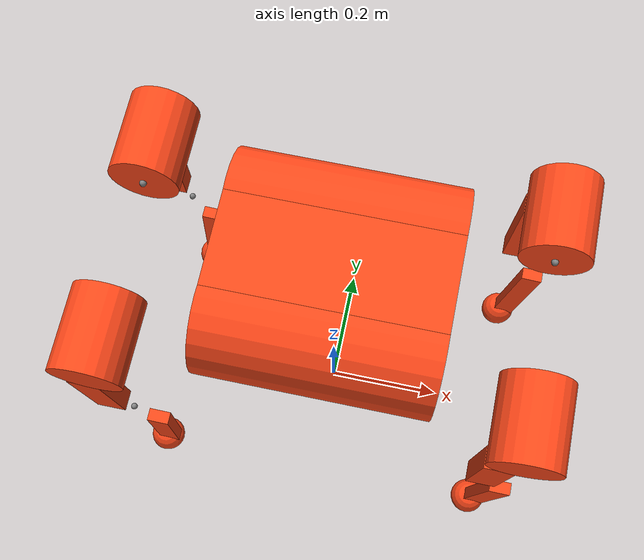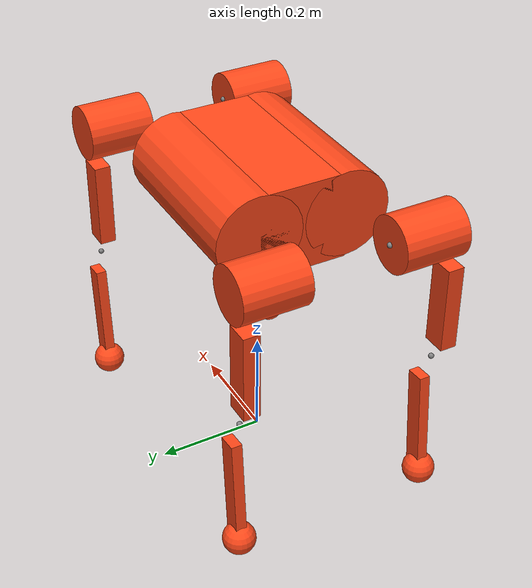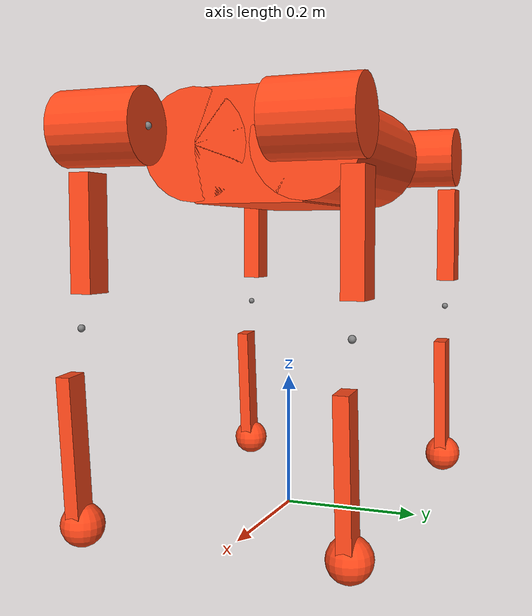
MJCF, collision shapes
<mujoco model="MCat">
  <default>
    <default class="robot">
      <default class="motor">
        <joint />
        <motor />
      </default>
      <default class="visual">
        <geom material="visualgeom" contype="0" conaffinity="0" group="2" />
      </default>
      <default class="collision">
        <geom material="collision_material" condim="3" contype="0" conaffinity="1" priority="1" group="1" solref="0.005 1" solimp="0.99 0.999 1e-05" friction="1 0.01 0.01" />
      </default>
    </default>
  </default>

  <compiler angle="radian" />

  <asset>
    <material name="blue" rgba="0 0 0 1" />
    <material name="default_material" rgba="0.7 0.7 0.7 1" />
    <material name="collision_material" rgba="1.0 0.28 0.1 0.9" />
    <mesh name="base.STL" file="package://panda3_description/meshes/base.STL" />
    <mesh name="FL_hip.STL" file="package://panda3_description/meshes/FL_hip.STL" />
    <mesh name="FL_thigh.STL" file="package://panda3_description/meshes/FL_thigh.STL" />
    <mesh name="FL_calf.STL" file="package://panda3_description/meshes/FL_calf.STL" />
    <mesh name="FL_foot.STL" file="package://panda3_description/meshes/FL_foot.STL" />
    <mesh name="FR_hip.STL" file="package://panda3_description/meshes/FR_hip.STL" />
    <mesh name="FR_thigh.STL" file="package://panda3_description/meshes/FR_thigh.STL" />
    <mesh name="FR_calf.STL" file="package://panda3_description/meshes/FR_calf.STL" />
    <mesh name="FR_foot.STL" file="package://panda3_description/meshes/FR_foot.STL" />
    <mesh name="RL_hip.STL" file="package://panda3_description/meshes/RL_hip.STL" />
    <mesh name="RL_thigh.STL" file="package://panda3_description/meshes/RL_thigh.STL" />
    <mesh name="RL_calf.STL" file="package://panda3_description/meshes/RL_calf.STL" />
    <mesh name="RL_foot.STL" file="package://panda3_description/meshes/RL_foot.STL" />
    <mesh name="RR_hip.STL" file="package://panda3_description/meshes/RR_hip.STL" />
    <mesh name="RR_thigh.STL" file="package://panda3_description/meshes/RR_thigh.STL" />
    <mesh name="RR_calf.STL" file="package://panda3_description/meshes/RR_calf.STL" />
    <mesh name="RR_foot.STL" file="package://panda3_description/meshes/RR_foot.STL" />
  </asset>

  <worldbody>
    <body name="base" pos="0.00000000 0.00000000 0.55351000" quat="1 0 0 0" childclass="robot">
      <inertial
        pos="0.00318608 0.00029494 -0.01284135"
        quat="1 0 0 0"
        mass="20.90069011"
        diaginertia="0.12311424 0.38550893 0.44680085"/>
      <freejoint name="floating_base" />
      <geom name="base_collision_0" pos="0 0 -0.013" quat="1.0 0.0 0.0 0.0" type="box" size="0.16 0.08 0.08" class="collision" />
      <geom name="base_collision_1" pos="0 -0.082 -0.011" quat="0.7071067835889063 0.0 0.7071067787841887 0.0" type="cylinder" size="0.08 0.16" class="collision" />
      <geom name="base_collision_2" pos="0 0.082 -0.011" quat="0.7071067835889063 0.0 0.7071067787841887 0.0" type="cylinder" size="0.08 0.16" class="collision" />
      <geom name="base_visual" pos="0 0 0" quat="1.0 0.0 0.0 0.0" material="blue" type="mesh" mesh="base.STL" class="visual" />
      <body name="FL_hip" pos="0.286 0.082 -0.0" quat="1.0 0.0 0.0 0.0">
        <joint name="FL_hip_joint" type="hinge" ref="0.0" class="motor" range="-0.8 0.8" axis="1 0 0" />
        <site name="FL_hip_joint_site" pos="0 0 0" quat="1 0 0 0" />
        <inertial pos="-0.00230043 -0.01037046 0.00016444" quat="1.0 0.0 0.0 0.0" mass="1.12888829" diaginertia="0.00101564 0.00159448 0.00123571" />
        <geom name="FL_hip_visual" pos="0 0 0" quat="1.0 0.0 0.0 0.0" material="blue" type="mesh" mesh="FL_hip.STL" class="visual" />
        <body name="FL_thigh" pos="0 0.1055 0" quat="1.0 0.0 0.0 0.0">
          <joint name="FL_thigh_joint" type="hinge" ref="0.0" class="motor" range="-1.62 3.735" axis="0 1 0" />
          <site name="FL_thigh_joint_site" pos="0 0 0" quat="1 0 0 0" />
          <inertial pos="-0.00302298 -0.03822477 -0.02112195" quat="1.0 0.0 0.0 0.0" mass="1.96466711" diaginertia="0.00912715 0.00870374 0.0027557" />
          <geom name="FL_thigh_collision_0" pos="0 -0.043 0" quat="0.7073882691671998 0.706825181105366 0.0 0.0" type="cylinder" size="0.05 0.06" class="collision" />
          <geom name="FL_thigh_collision_1" pos="-0.021 0 -0.135" quat="1.0 0.0 0.0 0.0" type="box" size="0.022 0.015 0.08" class="collision" />
          <geom name="FL_thigh_visual" pos="0 0 0" quat="1.0 0.0 0.0 0.0" material="blue" type="mesh" mesh="FL_thigh.STL" class="visual" />
          <body name="FL_calf" pos="0 0 -0.26" quat="1.0 0.0 0.0 0.0">
            <joint name="FL_calf_joint" type="hinge" ref="0.0" class="motor" range="-2.443 -0.524" axis="0 1 0" />
            <site name="FL_calf_joint_site" pos="0 0 0" quat="1 0 0 0" />
            <inertial pos="0.01449114 0.0 -0.12267318" quat="1.0 0.0 0.0 0.0" mass="0.22017362" diaginertia="0.00212347 0.00216129 5.417e-05" />
            <geom name="FL_calf_collision" pos="0.02 0 -0.158" quat="0.6785569656238399 0.0 0.7345477822465786 0.0" type="box" size="0.1 0.01 0.0175" class="collision" />
            <geom name="FL_calf_visual" pos="0 0 0" quat="1.0 0.0 0.0 0.0" material="blue" type="mesh" mesh="FL_calf.STL" class="visual" />
            <body name="FL_foot" pos="0 0 -0.26851" quat="1.0 0.0 0.0 0.0">
              <inertial pos="-0.00728207 0.0000000 -0.01210451" quat="1.0 0.0 0.0 0.0" mass="0.03331764" diaginertia="7.22e-06 1.096e-05 1.03e-05" />
              <geom name="FL_foot_collision" pos="0.005 0 0.005" quat="1.0 0.0 0.0 0.0" type="sphere" size="0.03" class="collision" />
              <geom name="FL_foot_visual" pos="0 0 0" quat="1.0 0.0 0.0 0.0" material="blue" type="mesh" mesh="FL_foot.STL" class="visual" />
            </body>
          </body>
        </body>
      </body>
      <body name="FR_hip" pos="0.286 -0.082 -0.0" quat="1.0 0.0 0.0 0.0">
        <joint name="FR_hip_joint" type="hinge" ref="0.0" class="motor" range="-0.8 0.8" axis="1 0 0" />
        <site name="FR_hip_joint_site" pos="0 0 0" quat="1 0 0 0" />
        <inertial pos="-0.00230043 0.01037046 -0.0001644" quat="1.0 0.0 0.0 0.0" mass="1.12888829" diaginertia="0.00101564 0.00159448 0.00123571" />
        <geom name="FR_hip_visual" pos="0 0 0" quat="1.0 0.0 0.0 0.0" material="blue" type="mesh" mesh="FR_hip.STL" class="visual" />
        <body name="FR_thigh" pos="0 -0.1035 0" quat="1.0 0.0 0.0 0.0">
          <joint name="FR_thigh_joint" type="hinge" ref="0.0" class="motor" range="-1.62 3.73" axis="0 1 0" />
          <site name="FR_thigh_joint_site" pos="0 0 0" quat="1 0 0 0" />
          <inertial pos="-0.0030885 0.03622672 -0.02113314" quat="1.0 0.0 0.0 0.0" mass="1.96467358" diaginertia="0.00913837 0.00871947 0.00276069" />
          <geom name="FR_thigh_collision_0" pos="0 0.043 0" quat="0.7073882691671998 0.706825181105366 0.0 0.0" type="cylinder" size="0.05 0.06" class="collision" />
          <geom name="FR_thigh_collision_1" pos="-0.021 0 -0.135" quat="1.0 0.0 0.0 0.0" type="box" size="0.022 0.015 0.08" class="collision" />
          <geom name="FR_thigh_visual" pos="0 0 0" quat="1.0 0.0 0.0 0.0" material="blue" type="mesh" mesh="FR_thigh.STL" class="visual" />
          <body name="FR_calf" pos="0 0 -0.26" quat="1.0 0.0 0.0 0.0">
            <joint name="FR_calf_joint" type="hinge" ref="0.0" class="motor" range="-2.44 -0.52" axis="0 1 0" />
            <site name="FR_calf_joint_site" pos="0 0 0" quat="1 0 0 0" />
            <inertial pos="0.01449052 0.0 -0.12267287" quat="1.0 0.0 0.0 0.0" mass="0.22016958" diaginertia="0.00212347 0.00216129 5.416e-05" />
            <geom name="FR_calf_collision" pos="0.02 0 -0.158" quat="0.6785569656238399 0.0 0.7345477822465786 0.0" type="box" size="0.1 0.01 0.0175" class="collision" />
            <geom name="FR_calf_visual" pos="0 0 0" quat="1.0 0.0 0.0 0.0" material="blue" type="mesh" mesh="FR_calf.STL" class="visual" />
            <body name="FR_foot" pos="0 0 -0.26851" quat="1.0 0.0 0.0 0.0">
              <inertial pos="-0.00728207 0.0000000 -0.01210451" quat="1.0 0.0 0.0 0.0" mass="0.03331764" diaginertia="7.22e-06 1.096e-05 1.03e-05" />
              <geom name="FR_foot_collision" pos="0.005 0 0.005" quat="1.0 0.0 0.0 0.0" type="sphere" size="0.03" class="collision" />
              <geom name="FR_foot_visual" pos="0 0 0" quat="1.0 0.0 0.0 0.0" material="blue" type="mesh" mesh="FR_foot.STL" class="visual" />
            </body>
          </body>
        </body>
      </body>
      <body name="RL_hip" pos="-0.286 0.082 -0.0" quat="1.0 0.0 0.0 0.0">
        <joint name="RL_hip_joint" type="hinge" ref="0.0" class="motor" range="-0.8 0.8" axis="1 0 0" />
        <site name="RL_hip_joint_site" pos="0 0 0" quat="1 0 0 0" />
        <inertial pos="0.00230043 -0.01037046 -0.00016444" quat="1.0 0.0 0.0 0.0" mass="1.12888829" diaginertia="0.00101564 0.00159448 0.00123571" />
        <geom name="RL_hip_visual" pos="0 0 0" quat="1.0 0.0 0.0 0.0" material="blue" type="mesh" mesh="RL_hip.STL" class="visual" />
        <body name="RL_thigh" pos="0 0.1055 0" quat="1.0 0.0 0.0 0.0">
          <joint name="RL_thigh_joint" type="hinge" ref="0.0" class="motor" range="-1.62 3.73" axis="0 1 0" />
          <site name="RL_thigh_joint_site" pos="0 0 0" quat="1 0 0 0" />
          <inertial pos="-0.00302298 -0.03822477 -0.02112195" quat="1.0 0.0 0.0 0.0" mass="1.96466711" diaginertia="0.00912715 0.00870374 0.0027557" />
          <geom name="RL_thigh_collision_0" pos="0 -0.043 0" quat="0.7073882691671998 0.706825181105366 0.0 0.0" type="cylinder" size="0.05 0.06" class="collision" />
          <geom name="RL_thigh_collision_1" pos="-0.021 0 -0.135" quat="1.0 0.0 0.0 0.0" type="box" size="0.022 0.015 0.08" class="collision" />
          <geom name="RL_thigh_visual" pos="0 0 0" quat="1.0 0.0 0.0 0.0" material="blue" type="mesh" mesh="RL_thigh.STL" class="visual" />
          <body name="RL_calf" pos="0 0 -0.26" quat="1.0 0.0 0.0 0.0">
            <joint name="RL_calf_joint" type="hinge" ref="0.0" class="motor" range="-2.44 -0.52" axis="0 1 0" />
            <site name="RL_calf_joint_site" pos="0 0 0" quat="1 0 0 0" />
            <inertial pos="0.01449114 0.0 -0.12267318" quat="1.0 0.0 0.0 0.0" mass="0.22017362" diaginertia="0.00212347 0.00216129 5.417e-05" />
            <geom name="RL_calf_collision" pos="0.02 0 -0.158" quat="0.6785569656238399 0.0 0.7345477822465786 0.0" type="box" size="0.1 0.01 0.0175" class="collision" />
            <geom name="RL_calf_visual" pos="0 0 0" quat="1.0 0.0 0.0 0.0" material="blue" type="mesh" mesh="RL_calf.STL" class="visual" />
            <body name="RL_foot" pos="0 0 -0.26851" quat="1.0 0.0 0.0 0.0">
              <inertial pos="-0.00728207 0.0000000 -0.01210451" quat="1.0 0.0 0.0 0.0" mass="0.03331764" diaginertia="7.2e-06 1.096e-05 1.031e-05" />
              <geom name="RL_foot_collision" pos="0.005 0 0.005" quat="1.0 0.0 0.0 0.0" type="sphere" size="0.03" class="collision" />
              <geom name="RL_foot_visual" pos="0 0 0" quat="1.0 0.0 0.0 0.0" material="blue" type="mesh" mesh="RL_foot.STL" class="visual" />
            </body>
          </body>
        </body>
      </body>
      <body name="RR_hip" pos="-0.286 -0.082 -0.0" quat="1.0 0.0 0.0 0.0">
        <joint name="RR_hip_joint" type="hinge" ref="0.0" class="motor" range="-0.8 0.8" axis="1 0 0" />
        <site name="RR_hip_joint_site" pos="0 0 0" quat="1 0 0 0" />
        <inertial pos="0.00230043 0.01037046 0.0001644" quat="1.0 0.0 0.0 0.0" mass="1.12888829" diaginertia="0.00101564 0.00159448 0.00123571" />
        <geom name="RR_hip_visual" pos="0 0 0" quat="1.0 0.0 0.0 0.0" material="blue" type="mesh" mesh="RR_hip.STL" class="visual" />
        <body name="RR_thigh" pos="0 -0.1035 0" quat="1.0 0.0 0.0 0.0">
          <joint name="RR_thigh_joint" type="hinge" ref="0.0" class="motor" range="-1.62 3.73" axis="0 1 0" />
          <site name="RR_thigh_joint_site" pos="0 0 0" quat="1 0 0 0" />
          <inertial pos="-0.0030885 0.03622672 -0.02113314" quat="1.0 0.0 0.0 0.0" mass="1.96467358" diaginertia="0.00913837 0.00871947 0.00276069" />
          <geom name="RR_thigh_collision_0" pos="0 0.043 0" quat="0.7073882691671998 0.706825181105366 0.0 0.0" type="cylinder" size="0.05 0.06" class="collision" />
          <geom name="RR_thigh_collision_1" pos="-0.021 0 -0.135" quat="1.0 0.0 0.0 0.0" type="box" size="0.022 0.015 0.08" class="collision" />
          <geom name="RR_thigh_visual" pos="0 0 0" quat="1.0 0.0 0.0 0.0" material="blue" type="mesh" mesh="RR_thigh.STL" class="visual" />
          <body name="RR_calf" pos="0 0 -0.26" quat="1.0 0.0 0.0 0.0">
            <joint name="RR_calf_joint" type="hinge" ref="0.0" class="motor" range="-2.44 -0.52" axis="0 1 0" />
            <site name="RR_calf_joint_site" pos="0 0 0" quat="1 0 0 0" />
            <inertial pos="0.01449052 0.0 -0.12267287" quat="1.0 0.0 0.0 0.0" mass="0.22016958" diaginertia="0.00212347 0.00216129 5.416e-05" />
            <geom name="RR_calf_collision" pos="0.02 0 -0.158" quat="0.6785569656238399 0.0 0.7345477822465786 0.0" type="box" size="0.1 0.01 0.0175" class="collision" />
            <geom name="RR_calf_visual" pos="0 0 0" quat="1.0 0.0 0.0 0.0" material="blue" type="mesh" mesh="RR_calf.STL" class="visual" />
            <body name="RR_foot" pos="0 0 -0.26851" quat="1.0 0.0 0.0 0.0">
              <inertial pos="-0.00728207 0.0000000 -0.01210451" quat="1.0 0.0 0.0 0.0" mass="0.03331764" diaginertia="7.22e-06 1.096e-05 1.031e-05" />
              <geom name="RR_foot_collision" pos="0.005 0 0.005" quat="1.0 0.0 0.0 0.0" type="sphere" size="0.03" class="collision" />
              <geom name="RR_foot_visual" pos="0 0 0" quat="1.0 0.0 0.0 0.0" material="blue" type="mesh" mesh="RR_foot.STL" class="visual" />
            </body>
          </body>
        </body>
      </body>
      <site name="base_site" pos="0 0 0" quat="1 0 0 0" />
      <camera name="front_camera" mode="track" fovy="90.0" quat="4.329780281177467e-17 4.329780281177466e-17 0.7071067811865475 0.7071067811865476" pos="0.0 2.0 0.5" />
      <camera name="side_camera" mode="track" fovy="90.0" quat="-0.5 -0.4999999999999999 0.5 0.5000000000000001" pos="-2.0 0.0 0.5" />
    </body>
  </worldbody>

  <actuator>
    <motor name="FL_hip_joint_ctrl" joint="FL_hip_joint" class="motor" />
    <motor name="FL_thigh_joint_ctrl" joint="FL_thigh_joint" class="motor" />
    <motor name="FL_calf_joint_ctrl" joint="FL_calf_joint" class="motor" />
    <motor name="FR_hip_joint_ctrl" joint="FR_hip_joint" class="motor" />
    <motor name="FR_thigh_joint_ctrl" joint="FR_thigh_joint" class="motor" />
    <motor name="FR_calf_joint_ctrl" joint="FR_calf_joint" class="motor" />
    <motor name="RL_hip_joint_ctrl" joint="RL_hip_joint" class="motor" />
    <motor name="RL_thigh_joint_ctrl" joint="RL_thigh_joint" class="motor" />
    <motor name="RL_calf_joint_ctrl" joint="RL_calf_joint" class="motor" />
    <motor name="RR_hip_joint_ctrl" joint="RR_hip_joint" class="motor" />
    <motor name="RR_thigh_joint_ctrl" joint="RR_thigh_joint" class="motor" />
    <motor name="RR_calf_joint_ctrl" joint="RR_calf_joint" class="motor" />
  </actuator>

  <contact>
    <exclude body1="FL_thigh" body2="FL_calf" />
    <exclude body1="FL_calf" body2="FL_foot" />
    <exclude body1="FR_thigh" body2="FR_calf" />
    <exclude body1="FR_calf" body2="FR_foot" />
    <exclude body1="RL_thigh" body2="RL_calf" />
    <exclude body1="RL_calf" body2="RL_foot" />
    <exclude body1="RR_thigh" body2="RR_calf" />
    <exclude body1="RR_calf" body2="RR_foot" />
  </contact>

  <sensor>
    <framepos name="FL_hip_joint_site_pos" objtype="site" objname="FL_hip_joint_site" />
    <framequat name="FL_hip_joint_site_quat" objtype="site" objname="FL_hip_joint_site" />
    <framelinvel name="FL_hip_joint_site_linvel" objtype="site" objname="FL_hip_joint_site" />
    <frameangvel name="FL_hip_joint_site_angvel" objtype="site" objname="FL_hip_joint_site" />
    <velocimeter name="FL_hip_joint_site_vel" site="FL_hip_joint_site" />
  </sensor>
</mujoco>
